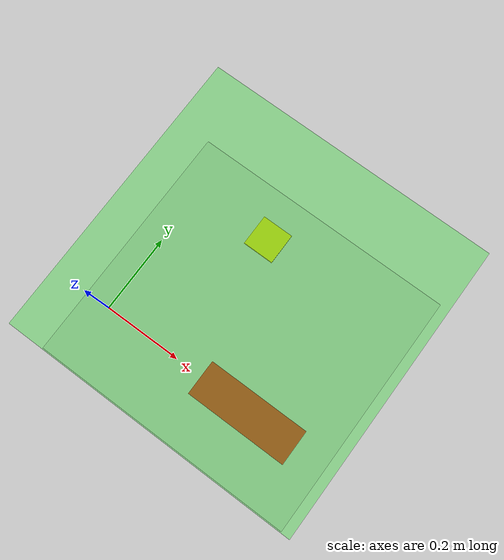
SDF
<?xml version="1.0" ?>
<sdf version="1.6">
  <world name="default">
    <include>
      <uri>model://ground_plane</uri>
    </include>

    <include>
      <uri>model://sun</uri>
    </include>

    <!-- Red box to be picked up at (0.4, 0.0) -->
    <model name="pick_box">
      <pose>0.4 0.0 0.07 1.5708 0 0</pose>
      <link name="box_link">
        <inertial>
          <mass>0.1</mass>
          <inertia>
            <ixx>0.000218</ixx><ixy>0</ixy><ixz>0</ixz>
            <iyy>0.000519</iyy><iyz>0</iyz>
            <izz>0.000628</izz>
          </inertia>
        </inertial>
        <collision name="collision">
          <geometry>
            <box><size>0.236 0.14 0.081</size></box>
          </geometry>
          <surface>
            <friction>
              <ode><mu>100.0</mu><mu2>100.0</mu2></ode>
            </friction>
            <contact>
              <ode><kp>1000000.0</kp><kd>1.0</kd></ode>
            </contact>
          </surface>
        </collision>
        <visual name="visual">
          <geometry>
            <box><size>0.236 0.14 0.081</size></box>
          </geometry>
          <material>
            <ambient>0.9 0.15 0.15 1</ambient>
            <diffuse>0.9 0.15 0.15 1</diffuse>
            <specular>0.3 0.3 0.3 1</specular>
          </material>
        </visual>
      </link>
    </model>

    <!-- Yellow flat marker showing the place target at (0.2, 0.35) -->
    <model name="place_marker">
      <pose>0.2 0.35 0.002 0 0 0</pose>
      <static>true</static>
      <link name="marker_link">
        <collision name="collision">
          <geometry>
            <box><size>0.08 0.08 0.004</size></box>
          </geometry>
        </collision>
        <visual name="visual">
          <geometry>
            <box><size>0.08 0.08 0.004</size></box>
          </geometry>
          <material>
            <ambient>0.95 0.85 0.1 1</ambient>
            <diffuse>0.95 0.85 0.1 1</diffuse>
          </material>
        </visual>
      </link>
    </model>

    <model name="workspace_limit">
      <pose>0.3 0.15 0.25 0 0 0</pose>
      <static>true</static>
      <link name="workspace_link">
        <visual name="visual">
          <geometry>
            <box><size>0.5 0.5 0.5</size></box>
          </geometry>
          <material>
            <ambient>0.0 1.0 0.0 0.3</ambient>
            <diffuse>0.0 1.0 0.0 0.3</diffuse>
          </material>
        </visual>
      </link>
    </model>

    <!-- GUI camera initial viewpoint -->
    <gui>
      <camera name="user_camera">
        <pose>1.682340 -1.406788 1.015652 -0.000001 0.275643 2.356194</pose>
      </camera>
    </gui>

    <!-- Link attacher: provides /ATTACHLINK and /DETACHLINK services for grasping -->
    <plugin name="gazebo_link_attacher" filename="libgazebo_link_attacher.so"/>

  </world>
</sdf>
